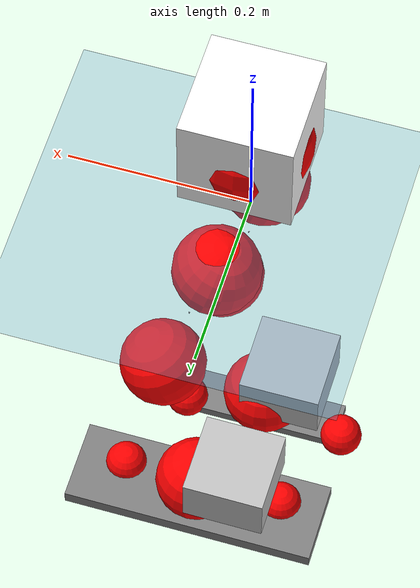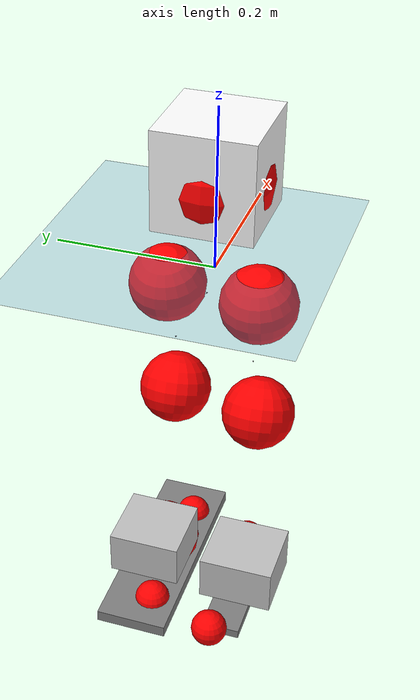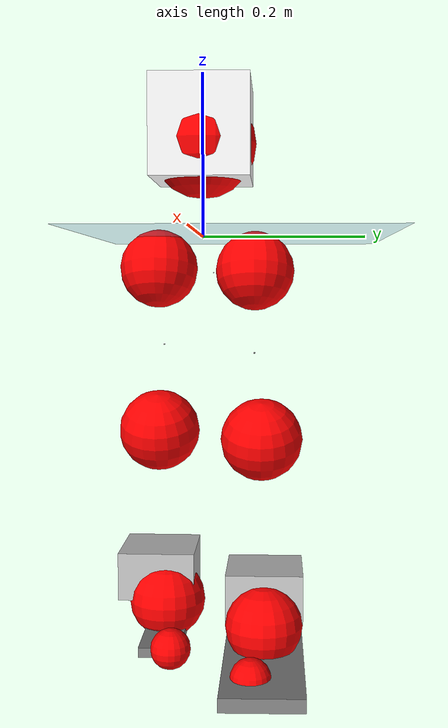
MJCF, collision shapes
<mujoco model="pi_12dof_release_v1">
  <compiler angle="radian" assetdir="assets" balanceinertia="true" inertiafromgeom="false"/>

  <option timestep="0.005" density="1.2" viscosity="2e-05"/>

  <size nkey="1"/>

  <visual>
    <quality shadowsize="8192"/>
    <map shadowclip="0.5"/>
  </visual>

  <default>
    <default class="/">
      <joint armature="0.01" damping="0.01" frictionloss="0.01"/>
      <geom contype="0" conaffinity="0" group="1" solref="-1000 -80"/>
      <site size="0.01 0.005 0.005" group="5"/>
      <general forcelimited="true" biastype="affine" gainprm="20" biasprm="0 -20 -0.5"/>
      <default class="foot">
        <geom size="0.0845 0.036 0.005" type="box" condim="6" group="4" priority="1" friction="0.9 0.2 0.2" solimp="0.015 1 0.005"/>
      </default>
      <default class="reward_collision_sphere">
        <geom group="5" rgba="1 0 0 1"/>
      </default>
    </default>
  </default>

  <asset>
    <texture type="skybox" colorspace="auto" name="//unnamed_texture_0" builtin="gradient" rgb1="0.95 0.95 0.95" rgb2="0.95 0.95 0.95" width="100" height="600"/>
    <texture type="2d" colorspace="auto" name="texplane" builtin="checker" rgb1="0.345 0.575 0.748" rgb2="0.345 0.575 0.748" markrgb="1 1 1" width="512" height="512"/>
    <material name="MatPlane" class="/" texture="texplane" texuniform="true" texrepeat="2 2" specular="0.9"/>
    <mesh name="baselink_1" class="/" file="baselink_1.STL"/>
    <mesh name="r_hip_pitch_link" class="/" file="r_hip_pitch_link.STL"/>
    <mesh name="r_hip_roll_link" class="/" file="r_hip_roll_link.STL"/>
    <mesh name="r_thigh_link" class="/" file="r_thigh_link.STL"/>
    <mesh name="r_calf_link" class="/" file="r_calf_link.STL"/>
    <mesh name="r_ankle_pitch_link" class="/" file="r_ankle_pitch_link.STL"/>
    <mesh name="r_ankle_roll_link" class="/" file="r_ankle_roll_link.STL"/>
    <mesh name="l_hip_pitch_link" class="/" file="l_hip_pitch_link.STL"/>
    <mesh name="l_hip_roll_link" class="/" file="l_hip_roll_link.STL"/>
    <mesh name="l_thigh_link" class="/" file="l_thigh_link.STL"/>
    <mesh name="l_calf_link" class="/" file="l_calf_link.STL"/>
    <mesh name="l_ankle_pitch_link" class="/" file="l_ankle_pitch_link.STL"/>
    <mesh name="l_ankle_roll_link" class="/" file="l_ankle_roll_link.STL"/>
  </asset>

  <worldbody>
    <geom name="floor" class="/" size="100 100 0.125" type="plane" group="0" material="MatPlane"/>
    <light name="toplight_shadow" class="/" pos="0 0 5" dir="0.0990148 0.0990148 -0.990148" type="directional" ambient="0.04 0.04 0.04" diffuse="0.55 0.55 0.55" specular="0.12 0.12 0.12"/>
    <light name="toplight_fill" class="/" pos="0 0 5" dir="0.0990148 0.0990148 -0.990148" type="directional" castshadow="false" ambient="0.04 0.04 0.04" diffuse="0.3 0.3 0.3" specular="0.08 0.08 0.08"/>
    <body name="trunk" pos="0.00135538 -0.000388013 0.00615106" quat="1 -4.08021e-05 -0.000544311 7.40915e-05">
      <inertial pos="0.0106326 0.00875796 0.0584785" quat="0.697232 0.0158392 0.00223534 0.716667" mass="3.80682" diaginertia="0.0425322 0.00137771 0.0299115"/>
      <joint name="//unnamed_joint_0" type="free"/>
      <geom name="//unnamed_geom_1" class="/" type="mesh" density="0" rgba="1 1 1 1" mesh="baselink_1"/>
      <geom name="//unnamed_geom_2" class="/" size="0.0602018 0.0602018 0.0602018" pos="0 0 0.121912" type="box" rgba="1 1 1 1"/>
      <geom name="//unnamed_geom_3" class="reward_collision_sphere" size="0.0662219" pos="0 0 0.106673"/>
      <site name="imu" class="/" pos="0.0546872 -0.00376203 -0.0438762" size="0.0120404"/>
      <camera name="track" class="/" pos="0 -1.40509 0" quat="0.707107 0.707107 0 0" mode="trackcom"/>
      <camera name="ego_camera" class="/" pos="0.103924 0 0.274302" quat="-0.5 -0.5 0.5 0.5"/>
      <body name="r_hip_pitch_link" pos="-0.000397806 -0.0139092 -0.0492516" quat="0.992274 -0.00111499 -0.124054 0.00121646">
        <inertial pos="-0.0077309 -0.0351413 -0.001824" quat="-0.0227268 0.710064 -0.00461765 0.703755" mass="0.7051" diaginertia="0.000608087 1.60883e-05 0.000653404"/>
        <joint name="r_hip_pitch_joint" class="/" pos="0 0 0" axis="-0.000424073 -0.998351 -0.0573954" range="-1.74261 1.44498" armature="0.0140779" damping="0.0624169" frictionloss="0.0132316"/>
        <geom name="//unnamed_geom_4" class="/" type="mesh" density="0" rgba="0.75294 0.75294 0.75294 1" mesh="r_hip_pitch_link"/>
        <geom name="//unnamed_geom_5" class="/" size="0.000602018 0.000602018 0.000602018" type="box" rgba="0.75294 0.75294 0.75294 1"/>
        <body name="r_hip_roll_link" pos="-0.000869033 -0.0413567 0.00372367" quat="1 -0.000175496 0.000281194 0.000182726">
          <inertial pos="-0.0051621 0.0012572 -0.102048" quat="0.703298 -0.0768956 -0.0798644 0.702197" mass="0.647311" diaginertia="0.00194463 4.87523e-05 0.00107306"/>
          <joint name="r_hip_roll_joint" class="/" pos="0 0 0" axis="-0.998567 -0.0395853 -0.0360021" stiffness="0.00156423" range="0.0625386 0.451423" armature="0.013845" damping="0.0086538" frictionloss="0.00801843"/>
          <geom name="//unnamed_geom_6" class="/" type="mesh" density="0" rgba="0.75294 0.75294 0.75294 1" mesh="r_hip_roll_link"/>
          <geom name="//unnamed_geom_7" class="/" size="0.000602018 0.000602018 0.000602018" type="box" rgba="0.75294 0.75294 0.75294 1"/>
          <geom name="//unnamed_geom_8" class="reward_collision_sphere" size="0.0481614"/>
          <body name="r_thigh_link" pos="-0.00801565 0.00793842 -0.0944373" quat="0.999993 -0.00343448 0.00162609 -0.000109041">
            <inertial pos="0.000944214 0.00175539 -0.0718178" quat="0.734907 0.678165 -0.000447846 0.00217992" mass="0.202853" diaginertia="0.000668736 1.6308e-05 0.000503658"/>
            <joint name="r_thigh_joint" class="/" pos="0 0 0" axis="0.00459856 0.0265538 -0.999637" range="-0.343551 0.549691" armature="0.0113477" damping="0" frictionloss="0.0123049"/>
            <geom name="//unnamed_geom_9" class="/" type="mesh" density="0" rgba="0.75294 0.75294 0.75294 1" mesh="r_thigh_link"/>
            <geom name="//unnamed_geom_10" class="/" size="0.000602018 0.000602018 0.000602018" type="box" rgba="0.75294 0.75294 0.75294 1"/>
            <body name="r_calf_link" pos="0.00551856 -0.00122365 -0.106479" quat="0.947576 0.000852684 0.319526 0.0011312">
              <inertial pos="-0.00905276 -0.00114525 -0.105111" quat="0.999918 -0.00885202 0.00503876 0.00771823" mass="1.339" diaginertia="0.0174667 0.000527297 0.00133751"/>
              <joint name="r_calf_joint" class="/" pos="0 0 0" axis="-0.0226081 -0.99949 0.0225503" stiffness="0.0030024" range="-1.68504 0.56021" armature="0.0154866" damping="0" frictionloss="0.0142965"/>
              <geom name="//unnamed_geom_11" class="/" type="mesh" density="0" rgba="0.75294 0.75294 0.75294 1" mesh="r_calf_link"/>
              <geom name="//unnamed_geom_12" class="/" size="0.000602018 0.000602018 0.000602018" type="box" rgba="0.75294 0.75294 0.75294 1"/>
              <geom name="//unnamed_geom_13" class="reward_collision_sphere" size="0.0481614"/>
              <body name="r_ankle_pitch_link" pos="0.00296218 -0.0094737 -0.209619" quat="0.980104 0.000147861 -0.198485 -0.000259686">
                <inertial pos="0.00601899 0.00310452 -0.0015395" quat="0.028372 0.728293 0.00985266 0.684607" mass="0.375333" diaginertia="0.00173829 3.85194e-05 0.00102527"/>
                <joint name="r_ankle_pitch_joint" class="/" pos="0 0 0" axis="-0.00055777 -0.999998 0.00183493" stiffness="0.0308457" range="-1.28605 0.504043" armature="0.0120172" damping="0.0508957" frictionloss="0.0118209"/>
                <geom name="//unnamed_geom_14" class="/" type="mesh" density="0" rgba="0.75294 0.75294 0.75294 1" mesh="r_ankle_pitch_link"/>
                <geom name="//unnamed_geom_15" class="/" size="0.0469574 0.0481614 0.0301009" type="box" rgba="0.75294 0.75294 0.75294 1"/>
                <body name="r_ankle_roll_link" pos="0.0953298 0.01277 -0.0025564" quat="1 0.000309601 -0.000124234 2.25976e-05">
                  <inertial pos="-0.0341111 -0.0010492 -0.0316786" quat="0.555717 0.433013 0.453411 0.545982" mass="0.89841" diaginertia="0.00654681 0.000193079 0.00237562"/>
                  <joint name="r_ankle_roll_joint" class="/" pos="0 0 0" axis="-0.999919 -0.0123205 -0.0030468" stiffness="0.00627194" range="-0.0364268 0.101241" armature="0.0111153" damping="0.0524004" frictionloss="0.006979"/>
                  <geom name="//unnamed_geom_16" class="/" type="mesh" density="0" rgba="0.75294 0.75294 0.75294 1" mesh="r_ankle_roll_link"/>
                  <geom name="//unnamed_geom_17" class="/" type="mesh" rgba="0.75294 0.75294 0.75294 1" mesh="r_ankle_roll_link"/>
                  <geom name="right_foot" class="foot" size="0.0904917 0.0251845 0.00586535" pos="-0.0706686 0 -0.0670516"/>
                  <geom name="//unnamed_geom_19" class="reward_collision_sphere" size="0.0481614" pos="-0.069283 0 -0.030478"/>
                  <geom name="//unnamed_geom_20" class="reward_collision_sphere" size="0.0240807" pos="0.0207849 0.0140509 -0.060956"/>
                  <geom name="//unnamed_geom_21" class="reward_collision_sphere" size="0.0240807" pos="-0.166279 0.0140509 -0.060956"/>
                  <site name="right_foot" class="foot" pos="-0.0706686 0 -0.0670516" size="0.0120404"/>
                </body>
              </body>
            </body>
          </body>
        </body>
      </body>
      <body name="l_hip_pitch_link" pos="0.0106446 0.0134306 -0.0509011" quat="0.99227 0.000237235 -0.124099 -8.05191e-05">
        <inertial pos="-0.00202611 0.0289004 0.000977444" quat="-0.0191704 0.715686 0.0382233 0.697112" mass="0.686074" diaginertia="0.000741114 1.72507e-05 0.0010132"/>
        <joint name="l_hip_pitch_joint" class="/" pos="0 0 0" axis="0.00103902 0.999379 0.0352144" stiffness="0.00523799" range="-1.06521 1.76499" armature="0.00601622" damping="0.0559855" frictionloss="0.0119277"/>
        <geom name="//unnamed_geom_22" class="/" type="mesh" density="0" rgba="0.75294 0.75294 0.75294 1" mesh="l_hip_pitch_link"/>
        <geom name="//unnamed_geom_23" class="/" size="0.000602018 0.000602018 0.000602018" type="box" rgba="0.75294 0.75294 0.75294 1"/>
        <body name="l_hip_roll_link" pos="0.00547642 0.0515471 0.000649448" quat="1 -9.51165e-05 -9.4864e-05 -7.44162e-05">
          <inertial pos="-0.000490717 -0.00744822 -0.0934766" quat="0.696465 -0.0802269 -0.0742602 0.709215" mass="0.677538" diaginertia="0.00169895 5.02213e-05 0.00103167"/>
          <joint name="l_hip_roll_joint" class="/" pos="0 0 0" axis="-0.998584 -0.0229683 0.0479904" range="-0.715103 0.00383301" armature="0.0122248" damping="0.0141355" frictionloss="0.0173191"/>
          <geom name="//unnamed_geom_24" class="/" type="mesh" density="0" rgba="0.75294 0.75294 0.75294 1" mesh="l_hip_roll_link"/>
          <geom name="//unnamed_geom_25" class="/" size="0.000602018 0.000602018 0.000602018" type="box" rgba="0.75294 0.75294 0.75294 1"/>
          <geom name="//unnamed_geom_26" class="reward_collision_sphere" size="0.0481614"/>
          <body name="l_thigh_link" pos="0.00559291 -0.000107295 -0.103258" quat="0.999999 -0.000210649 -0.00125038 1.8231e-05">
            <inertial pos="0.000559266 0.00143108 -0.0751809" quat="0.640663 0.766906 0.00501503 0.0371552" mass="0.200664" diaginertia="0.000661041 1.66492e-05 0.000549917"/>
            <joint name="l_thigh_joint" class="/" pos="0 0 0" axis="0.00673771 0.0104077 -0.999923" range="-0.503063 0.190186" armature="0.00987182" damping="0.0465805" frictionloss="0.00880893"/>
            <geom name="//unnamed_geom_27" class="/" type="mesh" density="0" rgba="0.75294 0.75294 0.75294 1" mesh="l_thigh_link"/>
            <geom name="//unnamed_geom_28" class="/" size="0.000602018 0.000602018 0.000602018" type="box" rgba="0.75294 0.75294 0.75294 1"/>
            <body name="l_calf_link" pos="0.00144233 0.0092473 -0.103951" quat="0.948407 -0.00254627 0.317044 0.000831807">
              <inertial pos="0.0098943 0.00054666 -0.114745" quat="0.999983 -0.000716175 -0.0036062 0.00453951" mass="1.48168" diaginertia="0.019151 0.000630433 0.00169844"/>
              <joint name="l_calf_joint" class="/" pos="0 0 0" axis="0.000313674 0.999919 -0.012715" stiffness="0.00731542" range="-0.6971 1.88884" armature="0.0169485" damping="0.00480472" frictionloss="0.017398"/>
              <geom name="//unnamed_geom_29" class="/" type="mesh" density="0" rgba="0.75294 0.75294 0.75294 1" mesh="l_calf_link"/>
              <geom name="//unnamed_geom_30" class="/" size="0.000602018 0.000602018 0.000602018" type="box" rgba="0.75294 0.75294 0.75294 1"/>
              <geom name="//unnamed_geom_31" class="reward_collision_sphere" size="0.0481614"/>
              <body name="l_ankle_pitch_link" pos="0.00242908 0.00350379 -0.222917" quat="0.980078 0.000720034 -0.198612 -2.25616e-05">
                <inertial pos="0.000162047 -0.000332116 1.92113e-06" quat="-0.00292666 0.707983 0.00345043 0.706215" mass="0.397217" diaginertia="0.00198386 4.43735e-05 0.00112194"/>
                <joint name="l_ankle_pitch_joint" class="/" pos="0 0 0" axis="0.00734967 0.999357 0.0351065" range="-0.511665 1.28366" armature="0.0118206" damping="0.0418511" frictionloss="0.00485036"/>
                <geom name="//unnamed_geom_32" class="/" type="mesh" density="0" rgba="0.75294 0.75294 0.75294 1" mesh="l_ankle_pitch_link"/>
                <geom name="//unnamed_geom_33" class="/" size="0.0469574 0.0481614 0.0301009" type="box" rgba="0.75294 0.75294 0.75294 1"/>
                <body name="l_ankle_roll_link" pos="0.113477 -4.85158e-05 -0.00104074" quat="0.999998 0.0013224 0.000423857 0.00120927">
                  <inertial pos="-0.0306232 -0.00107174 -0.020752" quat="0.527879 0.449589 0.434014 0.575192" mass="0.933832" diaginertia="0.00622176 0.000162071 0.00242306"/>
                  <joint name="l_ankle_roll_joint" class="/" pos="0 0 0" axis="-0.999961 0.00869463 0.00143351" stiffness="0.00134364" range="-0.174731 0.152419" armature="0.0129959" damping="0.0123889" frictionloss="0.018248"/>
                  <geom name="//unnamed_geom_34" class="/" type="mesh" density="0" rgba="0.75294 0.75294 0.75294 1" mesh="l_ankle_roll_link"/>
                  <geom name="//unnamed_geom_35" class="/" type="mesh" rgba="0.75294 0.75294 0.75294 1" mesh="l_ankle_roll_link"/>
                  <geom name="left_foot" class="foot" size="0.147128 0.0483488 0.00816771" pos="-0.0706686 0 -0.0670516"/>
                  <geom name="//unnamed_geom_37" class="reward_collision_sphere" size="0.0481614" pos="-0.069283 0 -0.030478"/>
                  <geom name="//unnamed_geom_38" class="reward_collision_sphere" size="0.0240807" pos="0.0207849 -0.0140509 -0.060956"/>
                  <geom name="//unnamed_geom_39" class="reward_collision_sphere" size="0.0240807" pos="-0.166279 -0.0140509 -0.060956"/>
                  <site name="left_foot" class="foot" pos="-0.0706686 0 -0.0670516" size="0.0120404"/>
                </body>
              </body>
            </body>
          </body>
        </body>
      </body>
    </body>
  </worldbody>

  <contact>
    <pair class="/" geom1="floor" geom2="right_foot" name="//unnamed_contact_1"/>
    <pair class="/" geom1="floor" geom2="left_foot" name="//unnamed_contact_0"/>
  </contact>

  <actuator>
    <general name="r_hip_pitch_joint" class="/" joint="r_hip_pitch_joint" forcerange="-23.3335 23.3335" gainprm="23.8931" biasprm="0 -23.8931 -0.473811"/>
    <general name="r_hip_roll_joint" class="/" joint="r_hip_roll_joint" forcerange="-32.9146 32.9146" gainprm="23.8931" biasprm="0 -23.8931 -0.473811"/>
    <general name="r_thigh_joint" class="/" joint="r_thigh_joint" forcerange="-18.8235 18.8235" gainprm="23.8931" biasprm="0 -23.8931 -0.473811"/>
    <general name="r_calf_joint" class="/" joint="r_calf_joint" forcerange="-23.4393 23.4393" gainprm="23.8931" biasprm="0 -23.8931 -0.473811"/>
    <general name="r_ankle_pitch_joint" class="/" joint="r_ankle_pitch_joint" forcerange="-32.6448 32.6448" gainprm="23.8931" biasprm="0 -23.8931 -0.473811"/>
    <general name="r_ankle_roll_joint" class="/" joint="r_ankle_roll_joint" forcerange="-24.7031 24.7031" gainprm="23.8931" biasprm="0 -23.8931 -0.473811"/>
    <general name="l_hip_pitch_joint" class="/" joint="l_hip_pitch_joint" forcerange="-24.984 24.984" gainprm="23.8931" biasprm="0 -23.8931 -0.473811"/>
    <general name="l_hip_roll_joint" class="/" joint="l_hip_roll_joint" forcerange="-29.7217 29.7217" gainprm="23.8931" biasprm="0 -23.8931 -0.473811"/>
    <general name="l_thigh_joint" class="/" joint="l_thigh_joint" forcerange="-26.0632 26.0632" gainprm="23.8931" biasprm="0 -23.8931 -0.473811"/>
    <general name="l_calf_joint" class="/" joint="l_calf_joint" forcerange="-30.2469 30.2469" gainprm="23.8931" biasprm="0 -23.8931 -0.473811"/>
    <general name="l_ankle_pitch_joint" class="/" joint="l_ankle_pitch_joint" forcerange="-22.0943 22.0943" gainprm="23.8931" biasprm="0 -23.8931 -0.473811"/>
    <general name="l_ankle_roll_joint" class="/" joint="l_ankle_roll_joint" forcerange="-33.4091 33.4091" gainprm="23.8931" biasprm="0 -23.8931 -0.473811"/>
  </actuator>

  <sensor>
    <gyro site="imu" name="imu_angular_velocity"/>
    <velocimeter site="imu" name="imu_linear_velocity"/>
    <framelinvel objtype="site" objname="left_foot" name="left_foot_global_linear_velocity"/>
    <framelinvel objtype="site" objname="right_foot" name="right_foot_global_linear_velocity"/>
  </sensor>

  <keyframe>
    <key name="home" qpos="0 0 0.291 1 0 0 0 0.4 0 0 -0.8 0.4 0 -0.4 0 0 0.8 -0.4 0"/>
  </keyframe>
</mujoco>
